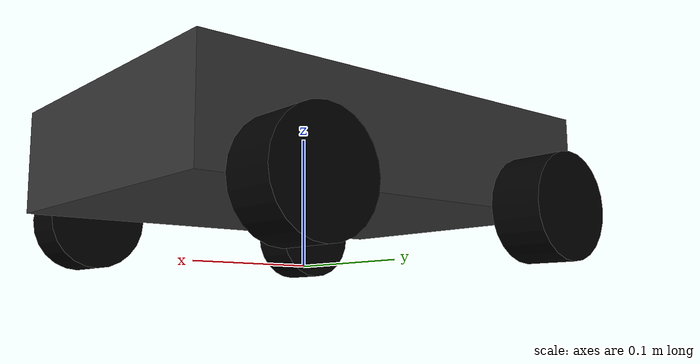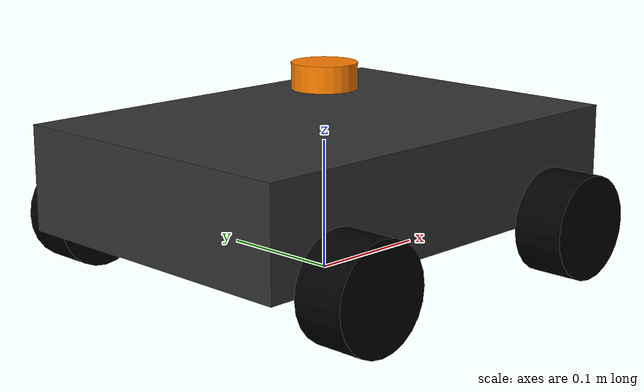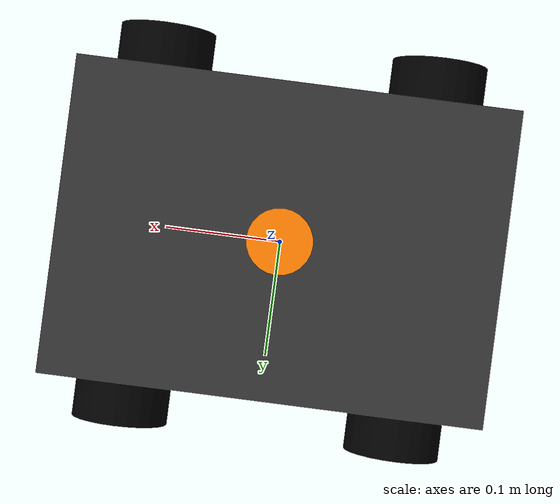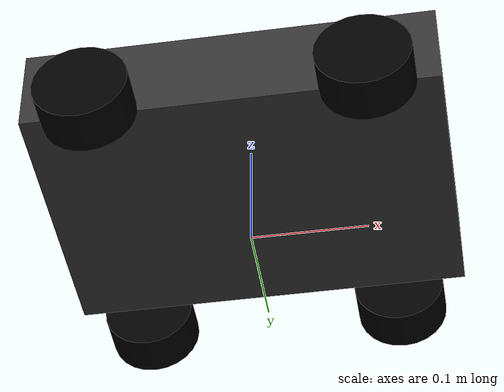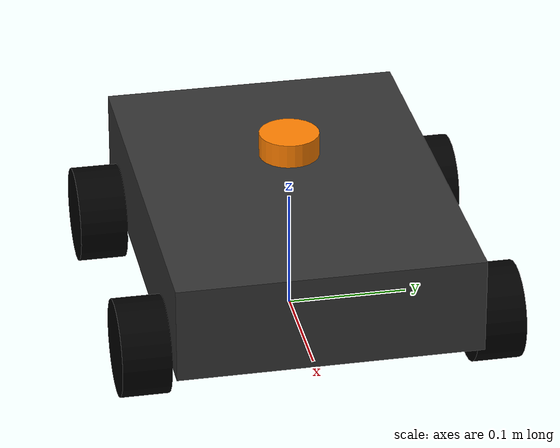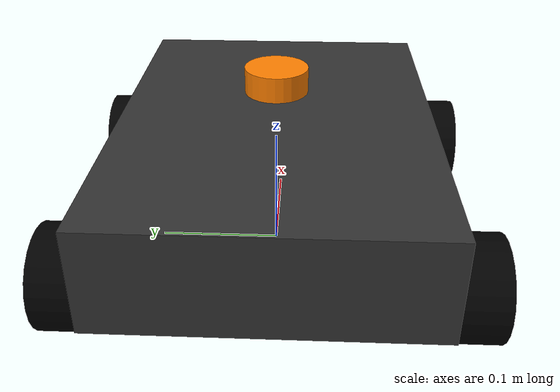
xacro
<?xml version="1.0"?>
<robot name="mecanum_robot" xmlns:xacro="http://www.ros.org/wiki/xacro">

  <!-- robot_ns：多机器人时设为 "robot1"..."robot6"，单机器人时留空 -->
  <xacro:arg name="robot_ns" default=""/>

  <!-- ===== 常量定义 ===== -->
  <xacro:property name="chassis_l"  value="0.35"/>  <!-- 车身长度（x 轴）-->
  <xacro:property name="chassis_w"  value="0.25"/>  <!-- 车身宽度（y 轴）-->
  <xacro:property name="chassis_h"  value="0.08"/>  <!-- 车身高度（z 轴）-->
  <xacro:property name="wheel_r"    value="0.04"/>  <!-- 轮子半径 -->
  <xacro:property name="wheel_w"    value="0.04"/>  <!-- 轮子宽度（圆柱高度）-->
  <!-- 轮轴相对于 base_link 的偏移量（base_link 距地面高度为 wheel_r）-->
  <xacro:property name="axle_x"     value="0.115"/> <!-- 前后轴距的一半 -->
  <xacro:property name="axle_y"     value="0.145"/> <!-- 左右轮距的一半 -->
  <xacro:property name="laser_h"    value="0.18"/>  <!-- 激光雷达距地面高度 -->

  <!-- ===== 材质定义 ===== -->
  <material name="dark_grey">
    <color rgba="0.2 0.2 0.2 1.0"/>
  </material>
  <material name="orange">
    <color rgba="1.0 0.5 0.0 1.0"/>
  </material>
  <material name="black">
    <color rgba="0.0 0.0 0.0 1.0"/>
  </material>
  <material name="white">
    <color rgba="1.0 1.0 1.0 1.0"/>
  </material>

  <!-- ===== 车轮宏定义 ===== -->
  <!-- origin_x/y：相对于 base_link 的安装位置 -->
  <xacro:macro name="mecanum_wheel" params="name origin_x origin_y">
    <link name="wheel_${name}_link">
      <visual>
        <geometry>
          <cylinder length="${wheel_w}" radius="${wheel_r}"/>
        </geometry>
        <origin xyz="0 0 0" rpy="${pi/2} 0 0"/>
        <material name="black"/>
      </visual>
      <collision>
        <geometry>
          <cylinder length="${wheel_w}" radius="${wheel_r}"/>
        </geometry>
        <origin xyz="0 0 0" rpy="${pi/2} 0 0"/>
      </collision>
      <inertial>
        <mass value="0.15"/>
        <!-- 绕旋转轴（旋转 pi/2 后为 y 轴）的惯量：Ixx=Izz=m(3r²+h²)/12，Iyy=mr²/2 -->
        <inertia ixx="0.000185" ixy="0" ixz="0"
                 iyy="0.000120" iyz="0"
                 izz="0.000185"/>
      </inertial>
    </link>

    <joint name="wheel_${name}_joint" type="continuous">
      <parent link="base_link"/>
      <child  link="wheel_${name}_link"/>
      <origin xyz="${origin_x} ${origin_y} 0" rpy="0 0 0"/>
      <axis xyz="0 1 0"/>
      <dynamics damping="0.01" friction="0.1"/>
    </joint>

    <!-- 抑制 Gazebo 的固定关节警告 -->
    <gazebo reference="wheel_${name}_link">
      <mu1>0.8</mu1>
      <mu2>0.8</mu2>
      <material>Gazebo/Black</material>
    </gazebo>
  </xacro:macro>

  <!-- ===== base_footprint（地面级坐标系，供导航使用）===== -->
  <link name="base_footprint"/>

  <joint name="base_footprint_joint" type="fixed">
    <parent link="base_footprint"/>
    <child  link="base_link"/>
    <origin xyz="0 0 ${wheel_r}" rpy="0 0 0"/>
  </joint>

  <!-- ===== base_link（底盘）===== -->
  <link name="base_link">
    <visual>
      <geometry>
        <box size="${chassis_l} ${chassis_w} ${chassis_h}"/>
      </geometry>
      <origin xyz="0 0 ${chassis_h/2}" rpy="0 0 0"/>
      <material name="dark_grey"/>
    </visual>
    <collision>
      <geometry>
        <box size="${chassis_l} ${chassis_w} ${chassis_h}"/>
      </geometry>
      <origin xyz="0 0 ${chassis_h/2}" rpy="0 0 0"/>
    </collision>
    <inertial>
      <mass value="3.0"/>
      <inertia ixx="0.025" ixy="0" ixz="0"
               iyy="0.041" iyz="0"
               izz="0.058"/>
    </inertial>
  </link>

  <gazebo reference="base_link">
    <material>Gazebo/DarkGrey</material>
  </gazebo>

  <!-- ===== 四个麦克纳姆轮 ===== -->
  <xacro:mecanum_wheel name="fl" origin_x=" ${axle_x}" origin_y=" ${axle_y}"/>
  <xacro:mecanum_wheel name="fr" origin_x=" ${axle_x}" origin_y="-${axle_y}"/>
  <xacro:mecanum_wheel name="rl" origin_x="-${axle_x}" origin_y=" ${axle_y}"/>
  <xacro:mecanum_wheel name="rr" origin_x="-${axle_x}" origin_y="-${axle_y}"/>

  <!-- ===== 激光雷达连杆 ===== -->
  <link name="laser_link">
    <visual>
      <geometry>
        <cylinder length="0.02" radius="0.025"/>
      </geometry>
      <origin xyz="0 0 0" rpy="0 0 0"/>
      <material name="orange"/>
    </visual>
    <collision>
      <geometry>
        <cylinder length="0.02" radius="0.025"/>
      </geometry>
    </collision>
    <inertial>
      <mass value="0.05"/>
      <inertia ixx="0.000005" ixy="0" ixz="0"
               iyy="0.000005" iyz="0"
               izz="0.000005"/>
    </inertial>
  </link>

  <joint name="laser_joint" type="fixed">
    <parent link="base_link"/>
    <child  link="laser_link"/>
    <!-- 激光雷达安装在底盘顶部中心 -->
    <origin xyz="0 0 ${chassis_h + 0.02 + 0.01}" rpy="0 0 0"/>
  </joint>

  <!-- ===== Gazebo 传感器与插件 ===== -->

  <!-- 激光雷达：360° 扫描，参数与 TurtleBot3 Burger 一致，AMCL 可直接使用 -->
  <gazebo reference="laser_link">
    <material>Gazebo/Orange</material>
    <sensor type="ray" name="lidar">
      <pose>0 0 0 0 0 0</pose>
      <visualize>false</visualize>
      <update_rate>10</update_rate>
      <ray>
        <scan>
          <horizontal>
            <samples>360</samples>
            <resolution>1</resolution>
            <min_angle>-3.14159265</min_angle>
            <max_angle>3.14159265</max_angle>
          </horizontal>
        </scan>
        <range>
          <min>0.12</min>
          <max>3.5</max>
          <resolution>0.01</resolution>
        </range>
        <noise>
          <type>gaussian</type>
          <mean>0.0</mean>
          <stddev>0.01</stddev>
        </noise>
      </ray>
      <plugin name="gazebo_ros_lidar" filename="libgazebo_ros_laser.so">
        <robotNamespace>$(arg robot_ns)</robotNamespace>
        <topicName>scan</topicName>
        <frameName>$(arg robot_ns)/laser_link</frameName>
      </plugin>
    </sensor>
  </gazebo>

  <!-- 全向平移插件：全向驱动（linear.x/y + angular.z → 里程计 + TF）-->
  <gazebo>
    <plugin name="mecanum_drive_controller" filename="libgazebo_ros_planar_move.so">
      <robotNamespace>$(arg robot_ns)</robotNamespace>
      <commandTopic>cmd_vel</commandTopic>
      <odometryTopic>odom</odometryTopic>
      <odometryFrame>$(arg robot_ns)/odom</odometryFrame>
      <odometryRate>20.0</odometryRate>
      <robotBaseFrame>$(arg robot_ns)/base_footprint</robotBaseFrame>
    </plugin>
  </gazebo>

  <!-- Ground-truth 位姿（P3D）— 仿真假动捕数据源 -->
  <gazebo>
    <plugin name="ground_truth_p3d" filename="libgazebo_ros_p3d.so">
      <robotNamespace>$(arg robot_ns)</robotNamespace>
      <bodyName>base_link</bodyName>
      <topicName>ground_truth_pose</topicName>
      <frameName>map</frameName>
      <updateRate>100.0</updateRate>
      <gaussianNoise>0.0</gaussianNoise>
    </plugin>
  </gazebo>

</robot>
